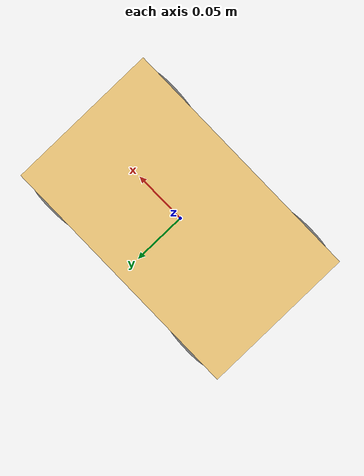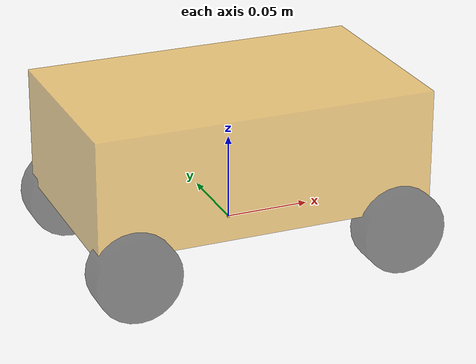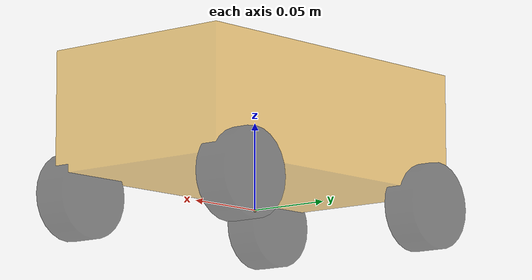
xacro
<!-- 底盘实现 -->
<robot xmlns:xacro="http://www.ros.org/wiki/xacro">
    <!-- 1.需要声明变量 -->
    <!-- pi值 -->
    <xacro:property name="PI" value="3.1415927"/>
    <!-- 底盘尺寸 -->
    <xacro:property name="car_lenght" value="0.2"/>
    <xacro:property name="car_width" value="0.12"/>
    <xacro:property name="car_height" value="0.07"/>
    <!-- 轮胎的尺寸 -->
    <xacro:property name="wheel_radius" value="0.025"/>
    <xacro:property name="wheel_lenght" value="0.02"/>
    <!-- 轮胎的关节平移量 -->
    <xacro:property name="wheel_joint_x" value="0.08"/>
    <xacro:property name="wheel_joint_y" value="${car_width / 2}"/>
    <xacro:property name="wheel_joint_z" value="${(-car_height/2 + distance - wheel_radius)}"/>
    <!-- 离地间距 -->
    <xacro:property name="distance" value="0.015"/>
    <material name="yellow">
        <color rgba="0.9 0.6 0.0 0.5"/>
    </material>
    <material name="black">
        <color rgba="0.0 0.0 0.0 0.5"/>
    </material>
    <!-- 2.设置base_footprint -->
    <link name="base_footprint">
        <visual>
                <geometry>
                    <sphere radius="0.001"/>
                </geometry>
        </visual>
    </link>
    <!-- 3.设置base_link -->
    <link name="base_link">
        <visual>
            <geometry>
                <box size="${car_lenght} ${car_width} ${car_height}"/>
            </geometry>
            <material name="yellow"/>
        </visual>
    </link>
    <!-- 4.使用joint将二者关联 -->
    <joint name="base_link2base_footprint" type="fixed">
        <parent link="base_footprint"/>
        <child link="base_link"/>
        <origin xyz="0.0 0.0 ${car_height/2 + distance}"/>

    </joint>
    <!-- 5.定义车轮相关的宏 -->
    <!-- 宏函数创建规则 封装可被复用的代码,变得数据以参数的方式暴露出去 -->
    <!-- link变量 name -->
    <!-- joint变量 name child_link origin(x，y,z) -->
    <xacro:macro name="wheel_func" params="link_name front_flag left_flag">
         <link name="${link_name}">
        <visual>
            <geometry>
                <cylinder radius="${wheel_radius}" length="${wheel_lenght}"/>
            </geometry>
            <material name="black"/>
            <origin rpy="${PI / 2} 0.0 0.0"/>
        </visual>
    </link>
    <joint name="${link_name}2base_link" type="continuous">
        <parent link="base_link"/>
        <child link="${link_name}"/>
        <origin xyz="${wheel_joint_x * front_flag} ${wheel_joint_y * left_flag} ${wheel_joint_z}"/>
        <axis xyz="0 1 0"/>
    </joint>
    </xacro:macro>
    <!-- 6.调用宏生成多个车轮 -->
    <xacro:wheel_func link_name="front_left" front_flag="1" left_flag="1"/>
    <xacro:wheel_func link_name="front_right" front_flag="1" left_flag="-1"/>
    <xacro:wheel_func link_name="back_left" front_flag="-1" left_flag="1"/>
    <xacro:wheel_func link_name="back_right" front_flag="-1" left_flag="-1"/>
</robot>
